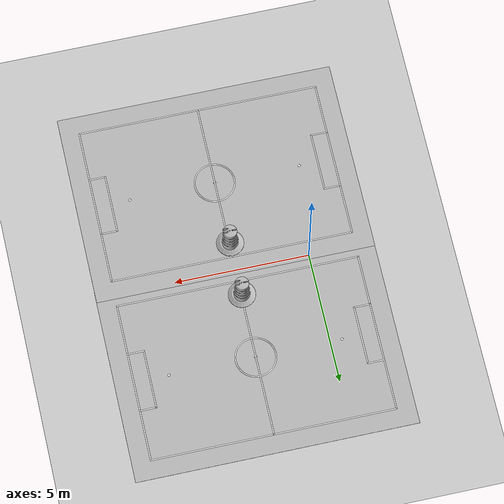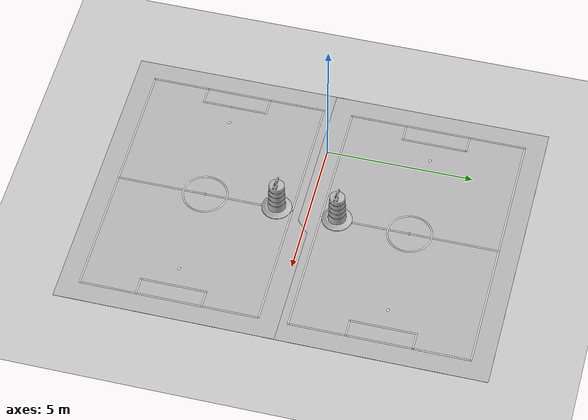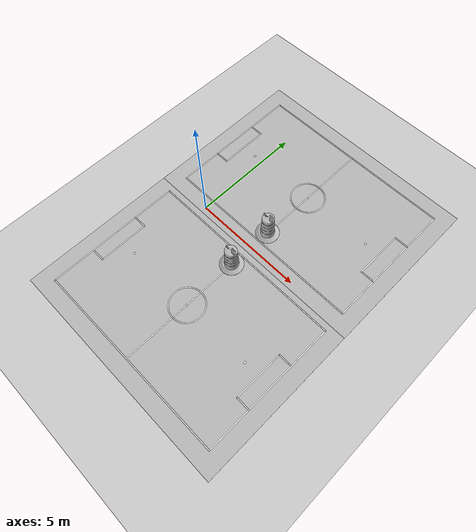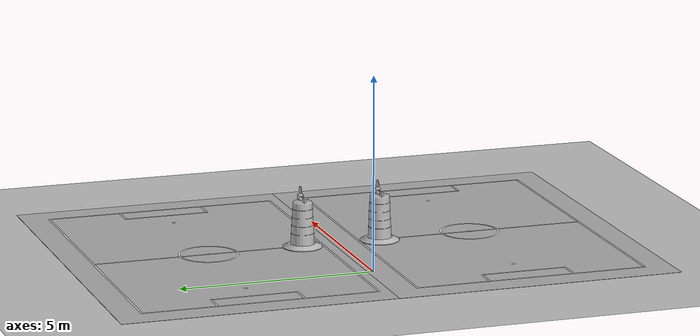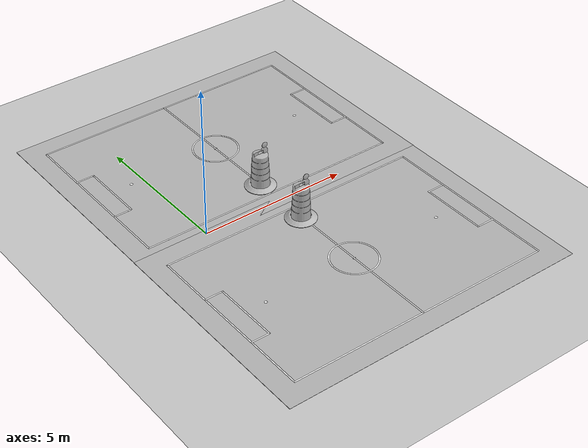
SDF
<sdf version="1.6">
 <world name="default">
  <light name="sun" type="directional">
   <pose>0 0 10 0 -0 0</pose>
   <diffuse>0.8 0.8 0.8 1</diffuse>
   <specular>0.2 0.2 0.2 1</specular>
   <attenuation>
    <range>1000</range>
    <constant>0.9</constant>
    <linear>0.01</linear>
    <quadratic>0.001</quadratic>
   </attenuation>
   <direction>-0.5 0.1 -0.9</direction>
  </light>
  <model name="ground_plane">
   <static>1</static>
   <link name="link">
    <collision name="collision">
     <geometry><plane><normal>0 0 1</normal><size>100 100</size></plane></geometry>
     <surface>
      <contact><collide_bitmask>65535</collide_bitmask></contact>
      <friction><ode><mu>100</mu><mu2>50</mu2></ode></friction>
     </surface>
    </collision>
    <visual name="visual">
     <cast_shadows>0</cast_shadows>
     <geometry><plane><normal>0 0 1</normal><size>100 100</size></plane></geometry>
     <material>
      <script><uri>file://media/materials/scripts/gazebo.material</uri><name>Gazebo/Grey</name></script>
     </material>
    </visual>
   </link>
  </model>
  <gravity>0 0 -9.8</gravity>
  <magnetic_field>6e-06 2.3e-05 -4.2e-05</magnetic_field>
  <atmosphere type="adiabatic"/>
  <physics name="default_physics" default="0" type="ode">
   <max_step_size>0.001</max_step_size>
   <real_time_factor>1</real_time_factor>
   <real_time_update_rate>1000</real_time_update_rate>
  </physics>
  <scene><ambient>0.4 0.4 0.4 1</ambient><background>0.7 0.7 0.7 1</background><shadows>1</shadows></scene>
  <audio><device>default</device></audio>
  <spherical_coordinates>
   <surface_model>EARTH_WGS84</surface_model>
   <latitude_deg>0</latitude_deg>
   <longitude_deg>0</longitude_deg>
   <elevation>0</elevation>
   <heading_deg>0</heading_deg>
  </spherical_coordinates>
  <model name="RoboCup 14 SPL Field">
   <static>1</static>
   <link name="field">
    <pose>0 0 0.01 0 -0 0</pose>
    <collision name="collision">
     <geometry><plane><normal>0 0 1</normal><size>10.4 7.4</size></plane></geometry>
     <surface><friction><ode><mu>100</mu><mu2>50</mu2></ode></friction></surface>
    </collision>
    <visual name="carpet">
     <cast_shadows>0</cast_shadows>
     <geometry><plane><normal>0 0 1</normal><size>10.4 7.4</size></plane></geometry>
     <material>
      <script>
       <uri>model://robocup09_spl_field/materials/scripts/</uri>
       <uri>model://robocup09_spl_field/materials/textures/</uri>
       <name>RoboCup/Carpet</name>
      </script>
     </material>
    </visual>
    <visual name="sideline_1">
     <pose>0 3 0.011 0 -0 0</pose>
     <cast_shadows>0</cast_shadows>
     <geometry><plane><normal>0 0 1</normal><size>9.05 0.05</size></plane></geometry>
     <material>
      <script><uri>file://media/materials/scripts/gazebo.material</uri><name>Gazebo/White</name></script>
     </material>
    </visual>
    <visual name="sideline_2">
     <pose>0 -3 0.011 0 -0 0</pose>
     <cast_shadows>0</cast_shadows>
     <geometry><plane><normal>0 0 1</normal><size>9.05 0.05</size></plane></geometry>
     <material>
      <script><uri>file://media/materials/scripts/gazebo.material</uri><name>Gazebo/White</name></script>
     </material>
    </visual>
    <visual name="endline_1">
     <pose>-4.5 0 0.011 0 -0 0</pose>
     <cast_shadows>0</cast_shadows>
     <geometry><plane><normal>0 0 1</normal><size>0.05 6.05</size></plane></geometry>
     <material>
      <script><uri>file://media/materials/scripts/gazebo.material</uri><name>Gazebo/White</name></script>
     </material>
    </visual>
    <visual name="endline_2">
     <pose>4.5 0 0.011 0 -0 0</pose>
     <cast_shadows>0</cast_shadows>
     <geometry><plane><normal>0 0 1</normal><size>0.05 6.05</size></plane></geometry>
     <material>
      <script><uri>file://media/materials/scripts/gazebo.material</uri><name>Gazebo/White</name></script>
     </material>
    </visual>
    <visual name="halfway_line">
     <pose>0 0 0.011 0 -0 0</pose>
     <cast_shadows>0</cast_shadows>
     <geometry><plane><normal>0 0 1</normal><size>0.05 6.05</size></plane></geometry>
     <material>
      <script><uri>file://media/materials/scripts/gazebo.material</uri><name>Gazebo/White</name></script>
     </material>
    </visual>
    <visual name="area_1_line_a">
     <pose>-3.9 0 0.011 0 -0 0</pose>
     <cast_shadows>0</cast_shadows>
     <geometry><plane><normal>0 0 1</normal><size>0.05 2.25</size></plane></geometry>
     <material>
      <script><uri>file://media/materials/scripts/gazebo.material</uri><name>Gazebo/White</name></script>
     </material>
    </visual>
    <visual name="area_2_line_a">
     <pose>-4.2 1.1 0.011 0 -0 0</pose>
     <cast_shadows>0</cast_shadows>
     <geometry><plane><normal>0 0 1</normal><size>0.65 0.05</size></plane></geometry>
     <material>
      <script><uri>file://media/materials/scripts/gazebo.material</uri><name>Gazebo/White</name></script>
     </material>
    </visual>
    <visual name="area_3_line_a">
     <pose>-4.2 -1.1 0.011 0 -0 0</pose>
     <cast_shadows>0</cast_shadows>
     <geometry><plane><normal>0 0 1</normal><size>0.65 0.05</size></plane></geometry>
     <material>
      <script><uri>file://media/materials/scripts/gazebo.material</uri><name>Gazebo/White</name></script>
     </material>
    </visual>
    <visual name="area_1_line_b">
     <pose>3.9 0 0.011 0 -0 0</pose>
     <cast_shadows>0</cast_shadows>
     <geometry><plane><normal>0 0 1</normal><size>0.05 2.25</size></plane></geometry>
     <material>
      <script><uri>file://media/materials/scripts/gazebo.material</uri><name>Gazebo/White</name></script>
     </material>
    </visual>
    <visual name="area_2_line_b">
     <pose>4.2 1.1 0.011 0 -0 0</pose>
     <cast_shadows>0</cast_shadows>
     <geometry><plane><normal>0 0 1</normal><size>0.65 0.05</size></plane></geometry>
     <material>
      <script><uri>file://media/materials/scripts/gazebo.material</uri><name>Gazebo/White</name></script>
     </material>
    </visual>
    <visual name="area_3_line_b">
     <pose>4.2 -1.1 0.011 0 -0 0</pose>
     <cast_shadows>0</cast_shadows>
     <geometry><plane><normal>0 0 1</normal><size>0.65 0.05</size></plane></geometry>
     <material>
      <script><uri>file://media/materials/scripts/gazebo.material</uri><name>Gazebo/White</name></script>
     </material>
    </visual>
    <visual name="penalty_a">
     <pose>-3.2 0 0.01 0 -0 0</pose>
     <cast_shadows>0</cast_shadows>
     <geometry><cylinder><radius>0.05</radius><length>0.0005</length></cylinder></geometry>
     <material>
      <script><uri>file://media/materials/scripts/gazebo.material</uri><name>Gazebo/White</name></script>
     </material>
    </visual>
    <visual name="penalty_b">
     <pose>3.2 0 0.01 0 -0 0</pose>
     <cast_shadows>0</cast_shadows>
     <geometry><cylinder><radius>0.05</radius><length>0.0005</length></cylinder></geometry>
     <material>
      <script><uri>file://media/materials/scripts/gazebo.material</uri><name>Gazebo/White</name></script>
     </material>
    </visual>
    <visual name="center_point">
     <pose>0 0 0.01 0 -0 0</pose>
     <cast_shadows>0</cast_shadows>
     <geometry><cylinder><radius>0.05</radius><length>0.0005</length></cylinder></geometry>
     <material>
      <script><uri>file://media/materials/scripts/gazebo.material</uri><name>Gazebo/White</name></script>
     </material>
    </visual>
    <visual name="center_circle">
     <pose>0 0 0.005 0 -0 0</pose>
     <cast_shadows>0</cast_shadows>
     <geometry>
      <mesh><scale>1 1 0.75</scale><uri>model://robocup14_spl_field/meshes/circle.dae</uri></mesh>
     </geometry>
     <material>
      <script><uri>file://media/materials/scripts/gazebo.material</uri><name>Gazebo/White</name></script>
     </material>
    </visual>
   </link>
   <pose>2.75521 3.44064 0 0 -0 0</pose>
  </model>
  <model name="RoboCup 14 SPL Field_0">
   <static>1</static>
   <link name="field">
    <pose>0 0 0.01 0 -0 0</pose>
    <collision name="collision">
     <geometry><plane><normal>0 0 1</normal><size>10.4 7.4</size></plane></geometry>
     <surface><friction><ode><mu>100</mu><mu2>50</mu2></ode></friction></surface>
    </collision>
    <visual name="carpet">
     <cast_shadows>0</cast_shadows>
     <geometry><plane><normal>0 0 1</normal><size>10.4 7.4</size></plane></geometry>
     <material>
      <script>
       <uri>model://robocup09_spl_field/materials/scripts/</uri>
       <uri>model://robocup09_spl_field/materials/textures/</uri>
       <name>RoboCup/Carpet</name>
      </script>
     </material>
    </visual>
    <visual name="sideline_1">
     <pose>0 3 0.011 0 -0 0</pose>
     <cast_shadows>0</cast_shadows>
     <geometry><plane><normal>0 0 1</normal><size>9.05 0.05</size></plane></geometry>
     <material>
      <script><uri>file://media/materials/scripts/gazebo.material</uri><name>Gazebo/White</name></script>
     </material>
    </visual>
    <visual name="sideline_2">
     <pose>0 -3 0.011 0 -0 0</pose>
     <cast_shadows>0</cast_shadows>
     <geometry><plane><normal>0 0 1</normal><size>9.05 0.05</size></plane></geometry>
     <material>
      <script><uri>file://media/materials/scripts/gazebo.material</uri><name>Gazebo/White</name></script>
     </material>
    </visual>
    <visual name="endline_1">
     <pose>-4.5 0 0.011 0 -0 0</pose>
     <cast_shadows>0</cast_shadows>
     <geometry><plane><normal>0 0 1</normal><size>0.05 6.05</size></plane></geometry>
     <material>
      <script><uri>file://media/materials/scripts/gazebo.material</uri><name>Gazebo/White</name></script>
     </material>
    </visual>
    <visual name="endline_2">
     <pose>4.5 0 0.011 0 -0 0</pose>
     <cast_shadows>0</cast_shadows>
     <geometry><plane><normal>0 0 1</normal><size>0.05 6.05</size></plane></geometry>
     <material>
      <script><uri>file://media/materials/scripts/gazebo.material</uri><name>Gazebo/White</name></script>
     </material>
    </visual>
    <visual name="halfway_line">
     <pose>0 0 0.011 0 -0 0</pose>
     <cast_shadows>0</cast_shadows>
     <geometry><plane><normal>0 0 1</normal><size>0.05 6.05</size></plane></geometry>
     <material>
      <script><uri>file://media/materials/scripts/gazebo.material</uri><name>Gazebo/White</name></script>
     </material>
    </visual>
    <visual name="area_1_line_a">
     <pose>-3.9 0 0.011 0 -0 0</pose>
     <cast_shadows>0</cast_shadows>
     <geometry><plane><normal>0 0 1</normal><size>0.05 2.25</size></plane></geometry>
     <material>
      <script><uri>file://media/materials/scripts/gazebo.material</uri><name>Gazebo/White</name></script>
     </material>
    </visual>
    <visual name="area_2_line_a">
     <pose>-4.2 1.1 0.011 0 -0 0</pose>
     <cast_shadows>0</cast_shadows>
     <geometry><plane><normal>0 0 1</normal><size>0.65 0.05</size></plane></geometry>
     <material>
      <script><uri>file://media/materials/scripts/gazebo.material</uri><name>Gazebo/White</name></script>
     </material>
    </visual>
    <visual name="area_3_line_a">
     <pose>-4.2 -1.1 0.011 0 -0 0</pose>
     <cast_shadows>0</cast_shadows>
     <geometry><plane><normal>0 0 1</normal><size>0.65 0.05</size></plane></geometry>
     <material>
      <script><uri>file://media/materials/scripts/gazebo.material</uri><name>Gazebo/White</name></script>
     </material>
    </visual>
    <visual name="area_1_line_b">
     <pose>3.9 0 0.011 0 -0 0</pose>
     <cast_shadows>0</cast_shadows>
     <geometry><plane><normal>0 0 1</normal><size>0.05 2.25</size></plane></geometry>
     <material>
      <script><uri>file://media/materials/scripts/gazebo.material</uri><name>Gazebo/White</name></script>
     </material>
    </visual>
    <visual name="area_2_line_b">
     <pose>4.2 1.1 0.011 0 -0 0</pose>
     <cast_shadows>0</cast_shadows>
     <geometry><plane><normal>0 0 1</normal><size>0.65 0.05</size></plane></geometry>
     <material>
      <script><uri>file://media/materials/scripts/gazebo.material</uri><name>Gazebo/White</name></script>
     </material>
    </visual>
    <visual name="area_3_line_b">
     <pose>4.2 -1.1 0.011 0 -0 0</pose>
     <cast_shadows>0</cast_shadows>
     <geometry><plane><normal>0 0 1</normal><size>0.65 0.05</size></plane></geometry>
     <material>
      <script><uri>file://media/materials/scripts/gazebo.material</uri><name>Gazebo/White</name></script>
     </material>
    </visual>
    <visual name="penalty_a">
     <pose>-3.2 0 0.01 0 -0 0</pose>
     <cast_shadows>0</cast_shadows>
     <geometry><cylinder><radius>0.05</radius><length>0.0005</length></cylinder></geometry>
     <material>
      <script><uri>file://media/materials/scripts/gazebo.material</uri><name>Gazebo/White</name></script>
     </material>
    </visual>
    <visual name="penalty_b">
     <pose>3.2 0 0.01 0 -0 0</pose>
     <cast_shadows>0</cast_shadows>
     <geometry><cylinder><radius>0.05</radius><length>0.0005</length></cylinder></geometry>
     <material>
      <script><uri>file://media/materials/scripts/gazebo.material</uri><name>Gazebo/White</name></script>
     </material>
    </visual>
    <visual name="center_point">
     <pose>0 0 0.01 0 -0 0</pose>
     <cast_shadows>0</cast_shadows>
     <geometry><cylinder><radius>0.05</radius><length>0.0005</length></cylinder></geometry>
     <material>
      <script><uri>file://media/materials/scripts/gazebo.material</uri><name>Gazebo/White</name></script>
     </material>
    </visual>
    <visual name="center_circle">
     <pose>0 0 0.005 0 -0 0</pose>
     <cast_shadows>0</cast_shadows>
     <geometry>
      <mesh><scale>1 1 0.75</scale><uri>model://robocup14_spl_field/meshes/circle.dae</uri></mesh>
     </geometry>
     <material>
      <script><uri>file://media/materials/scripts/gazebo.material</uri><name>Gazebo/White</name></script>
     </material>
    </visual>
   </link>
   <pose>2.74888 -3.54468 0 0 -0 0</pose>
  </model>
  <model name="Construction Barrel">
   <link name="link">
    <inertial>
     <pose>0 0 0.4 0 -0 0</pose>
     <mass>500</mass>
     <inertia><ixx>51.2096</ixx><iyy>51.2096</iyy><izz>25</izz><ixy>0</ixy><ixz>0</ixz><iyz>0</iyz></inertia>
    </inertial>
    <collision name="collision">
     <geometry><mesh><uri>model://construction_barrel/meshes/construction_barrel.dae</uri></mesh></geometry>
    </collision>
    <visual name="visual">
     <geometry><mesh><uri>model://construction_barrel/meshes/construction_barrel.dae</uri></mesh></geometry>
    </visual>
   </link>
   <pose>2.70672 -1.08491 0.009998 7e-06 -4e-06 4.7e-05</pose>
  </model>
  <model name="Construction Barrel_0">
   <link name="link">
    <inertial>
     <pose>0 0 0.4 0 -0 0</pose>
     <mass>500</mass>
     <inertia><ixx>51.2096</ixx><iyy>51.2096</iyy><izz>25</izz><ixy>0</ixy><ixz>0</ixz><iyz>0</iyz></inertia>
    </inertial>
    <collision name="collision">
     <geometry><mesh><uri>model://construction_barrel/meshes/construction_barrel.dae</uri></mesh></geometry>
    </collision>
    <visual name="visual">
     <geometry><mesh><uri>model://construction_barrel/meshes/construction_barrel.dae</uri></mesh></geometry>
    </visual>
   </link>
   <pose>2.72067 0.975438 0.009998 7e-06 -4e-06 6.2e-05</pose>
  </model>
 </world>
</sdf>
